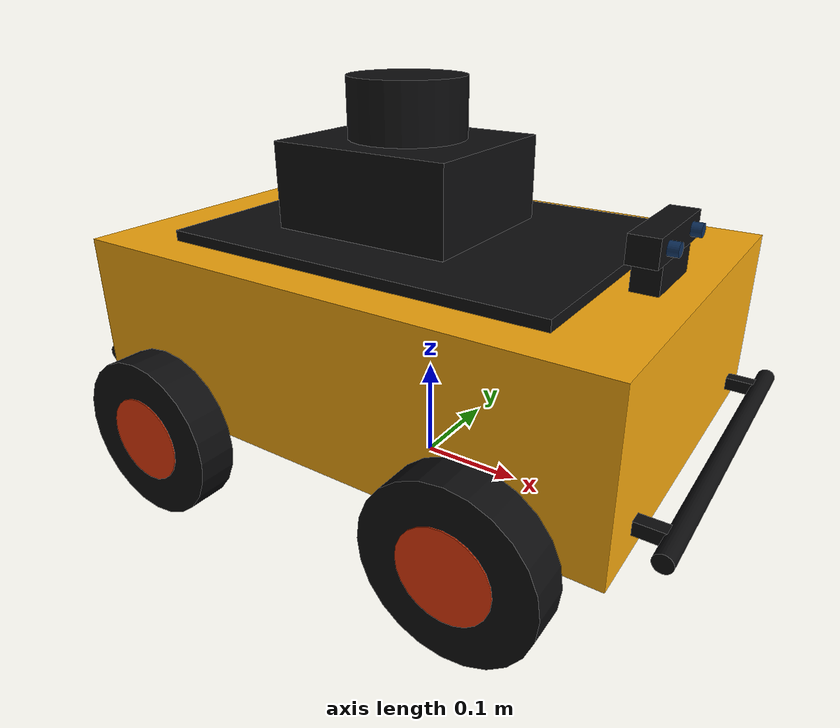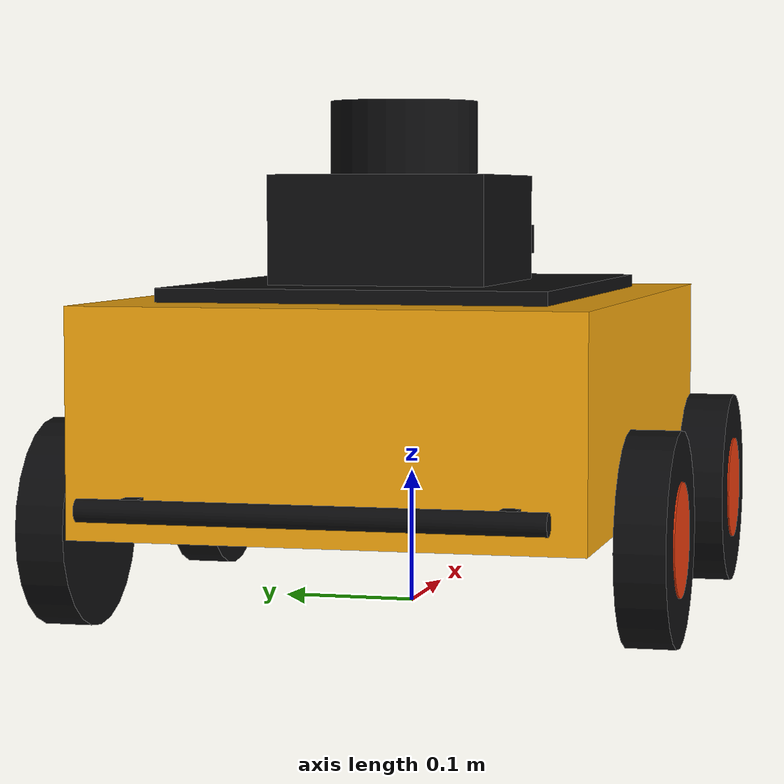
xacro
<?xml version="1.0" encoding="UTF-8"?>
<robot xmlns:xacro="http://www.ros.org/wiki/xacro" name="yellow_robot_v1_2">

  <!-- 一、集中参数：保留源码基本车身尺寸，所有衍生位置用表达式计算。 -->
  <xacro:property name="body_length" value="0.52"/>
  <xacro:property name="body_width" value="0.36"/>
  <xacro:property name="body_height" value="0.16"/>
  <xacro:property name="body_mass" value="12.0"/>
  <xacro:property name="wheel_radius" value="0.075"/>
  <xacro:property name="wheel_width" value="0.035"/>
  <xacro:property name="wheel_mass" value="0.8"/>
  <xacro:property name="wheel_x" value="0.16"/>
  <xacro:property name="wheel_y" value="0.21"/>
  <xacro:property name="body_top" value="${wheel_radius + body_height}"/>
  <xacro:property name="stereo_baseline" value="0.06"/>
  <xacro:property name="camera_x" value="0.24"/>
  <!-- 光心Z=0.273；外壳半高0.012，使外壳顶部Z=0.285，与设备机箱中部齐平。 -->
  <xacro:property name="camera_z" value="0.273"/>
  <xacro:property name="camera_width" value="640"/>
  <xacro:property name="camera_height" value="480"/>
  <xacro:property name="camera_hfov" value="1.047"/>
  <xacro:property name="laser_samples" value="360"/>
  <xacro:property name="laser_min_angle" value="${-pi}"/>
  <xacro:property name="laser_max_angle" value="${pi}"/>
  <xacro:property name="laser_min_range" value="0.12"/>
  <xacro:property name="laser_max_range" value="8.0"/>
  <xacro:property name="laser_x" value="-0.025"/>
  <xacro:property name="laser_z" value="0.385"/>

  <!-- URDF材质供RViz使用；各实体另设Gazebo材质。 -->
  <material name="yellow"><color rgba="0.95 0.65 0.05 1"/></material>
  <material name="black"><color rgba="0.05 0.05 0.055 1"/></material>
  <material name="orange"><color rgba="0.9 0.22 0.04 1"/></material>
  <material name="blue"><color rgba="0.05 0.18 0.35 1"/></material>

  <!-- 二、几何宏：视觉/碰撞同形。惯量以各实体自身中心计算。 -->
  <xacro:macro name="box_inertia" params="m sx sy sz xyz:='0 0 0'">
    <inertial>
      <origin xyz="${xyz}" rpy="0 0 0"/>
      <mass value="${m}"/>
      <inertia ixx="${m*(sy*sy+sz*sz)/12}" ixy="0" ixz="0"
               iyy="${m*(sx*sx+sz*sz)/12}" iyz="0" izz="${m*(sx*sx+sy*sy)/12}"/>
    </inertial>
  </xacro:macro>

  <xacro:macro name="fixed_box" params="name parent xyz sx sy sz m color gz">
    <link name="${name}">
      <xacro:box_inertia m="${m}" sx="${sx}" sy="${sy}" sz="${sz}"/>
      <visual name="${name}_visual">
        <geometry><box size="${sx} ${sy} ${sz}"/></geometry>
        <material name="${color}"/>
      </visual>
      <collision name="${name}_collision">
        <geometry><box size="${sx} ${sy} ${sz}"/></geometry>
      </collision>
    </link>
    <joint name="${name}_joint" type="fixed">
      <parent link="${parent}"/><child link="${name}"/>
      <origin xyz="${xyz}" rpy="0 0 0"/>
    </joint>
    <gazebo reference="${name}"><material>${gz}</material></gazebo>
  </xacro:macro>

  <!-- 圆柱局部轴为Z；方向通过固定关节rpy指定。 -->
  <xacro:macro name="fixed_cylinder" params="name parent xyz rpy radius length m color gz">
    <link name="${name}">
      <inertial>
        <mass value="${m}"/>
        <inertia ixx="${m*(3*radius*radius+length*length)/12}" ixy="0" ixz="0"
                 iyy="${m*(3*radius*radius+length*length)/12}" iyz="0"
                 izz="${m*radius*radius/2}"/>
      </inertial>
      <visual name="${name}_visual">
        <geometry><cylinder radius="${radius}" length="${length}"/></geometry>
        <material name="${color}"/>
      </visual>
      <collision name="${name}_collision">
        <geometry><cylinder radius="${radius}" length="${length}"/></geometry>
      </collision>
    </link>
    <joint name="${name}_joint" type="fixed">
      <parent link="${parent}"/><child link="${name}"/>
      <origin xyz="${xyz}" rpy="${rpy}"/>
    </joint>
    <gazebo reference="${name}"><material>${gz}</material></gazebo>
  </xacro:macro>

  <!-- 三、根坐标与黄色车身；车身惯性中心修正至几何中心。 -->
  <link name="base_footprint"/>
  <joint name="base_footprint_joint" type="fixed">
    <parent link="base_footprint"/><child link="base_link"/>
    <origin xyz="0 0 0" rpy="0 0 0"/>
  </joint>
  <link name="base_link">
    <xacro:box_inertia m="${body_mass}" sx="${body_length}" sy="${body_width}"
                      sz="${body_height}" xyz="0 0 ${wheel_radius + body_height/2}"/>
    <visual name="body_visual">
      <origin xyz="0 0 ${wheel_radius + body_height/2}"/>
      <geometry><box size="${body_length} ${body_width} ${body_height}"/></geometry>
      <material name="yellow"/>
    </visual>
    <collision name="body_collision">
      <origin xyz="0 0 ${wheel_radius + body_height/2}"/>
      <geometry><box size="${body_length} ${body_width} ${body_height}"/></geometry>
    </collision>
  </link>
  <gazebo reference="base_link"><material>Gazebo/Yellow</material></gazebo>
  <!-- 四、四个轮胎：轴沿Y，轮胎圆柱惯量也按Y轴设置。轮毂比轮胎外侧突出1毫米，避免共面闪烁。 -->
  <xacro:macro name="wheel" params="name x y side">
    <link name="${name}">
      <inertial>
        <mass value="${wheel_mass}"/>
        <inertia ixx="${wheel_mass*(3*wheel_radius*wheel_radius+wheel_width*wheel_width)/12}"
                 ixy="0" ixz="0" iyy="${wheel_mass*wheel_radius*wheel_radius/2}" iyz="0"
                 izz="${wheel_mass*(3*wheel_radius*wheel_radius+wheel_width*wheel_width)/12}"/>
      </inertial>
      <visual name="${name}_visual">
        <origin xyz="0 0 0" rpy="${pi/2} 0 0"/>
        <geometry><cylinder radius="${wheel_radius}" length="${wheel_width}"/></geometry>
        <material name="black"/>
      </visual>
      <collision name="${name}_collision">
        <origin xyz="0 0 0" rpy="${pi/2} 0 0"/>
        <geometry><cylinder radius="${wheel_radius}" length="${wheel_width}"/></geometry>
      </collision>
    </link>
    <joint name="${name}_joint" type="continuous">
      <parent link="base_link"/><child link="${name}"/>
      <origin xyz="${x} ${y} ${wheel_radius}" rpy="0 0 0"/>
      <axis xyz="0 1 0"/>
      <dynamics damping="0.01" friction="0"/>
    </joint>
    <gazebo reference="${name}">
      <material>Gazebo/Black</material>
      <mu1>1.0</mu1><mu2>1.0</mu2>
      <!-- Finite contact compliance prevents persistent four-wheel creep. -->
      <kp>1000000.0</kp><kd>100.0</kd>
      <minDepth>0.001</minDepth><maxVel>0.1</maxVel>
    </gazebo>
    <xacro:fixed_cylinder name="${name}_hub" parent="${name}"
      xyz="0 ${side*wheel_width/2} 0" rpy="${pi/2} 0 0"
      radius="0.04" length="0.002" m="0.02" color="orange" gz="Gazebo/Orange"/>
  </xacro:macro>
  <xacro:wheel name="left_front_wheel" x="${wheel_x}" y="${wheel_y}" side="1"/>
  <xacro:wheel name="left_rear_wheel" x="${-wheel_x}" y="${wheel_y}" side="1"/>
  <xacro:wheel name="right_front_wheel" x="${wheel_x}" y="${-wheel_y}" side="-1"/>
  <xacro:wheel name="right_rear_wheel" x="${-wheel_x}" y="${-wheel_y}" side="-1"/>

  <!-- 五、平台、设备箱、雷达壳体；扫描平面高于所有上部实体。 -->
  <xacro:fixed_box name="top_deck" parent="base_link" xyz="0 0 ${body_top+0.005}"
    sx="0.38" sy="0.28" sz="0.01" m="0.4" color="black" gz="Gazebo/Black"/>
  <xacro:fixed_box name="equipment_box" parent="base_link" xyz="-0.025 0 ${body_top+0.05}"
    sx="0.18" sy="0.16" sz="0.08" m="1.0" color="black" gz="Gazebo/Black"/>
  <xacro:fixed_cylinder name="lidar_housing" parent="base_link"
    xyz="${laser_x} 0 ${body_top+0.1175}" rpy="0 0 0"
    radius="0.055" length="0.055" m="0.2" color="black" gz="Gazebo/Black"/>
  <link name="laser_link"/>
  <joint name="laser_joint" type="fixed">
    <parent link="base_link"/><child link="laser_link"/>
    <origin xyz="${laser_x} 0 ${laser_z}" rpy="0 0 0"/>
  </joint>

  <!-- 六、前后防撞杆与支架。保留实体碰撞，纳入整车外形。 -->
  <xacro:macro name="bumper" params="name side">
    <xacro:fixed_cylinder name="${name}_bar" parent="base_link"
      xyz="${side*0.29} 0 0.10" rpy="${pi/2} 0 0"
      radius="0.008" length="0.32" m="0.08" color="black" gz="Gazebo/Black"/>
    <xacro:fixed_box name="${name}_left_bracket" parent="base_link"
      xyz="${side*0.2725} 0.13 0.10" sx="0.035" sy="0.012" sz="0.012"
      m="0.02" color="black" gz="Gazebo/Black"/>
    <xacro:fixed_box name="${name}_right_bracket" parent="base_link"
      xyz="${side*0.2725} -0.13 0.10" sx="0.035" sy="0.012" sz="0.012"
      m="0.02" color="black" gz="Gazebo/Black"/>
  </xacro:macro>
  <xacro:bumper name="front_bumper" side="1"/>
  <xacro:bumper name="rear_bumper" side="-1"/>

  <!-- 七、前置双目：camera_link为光心中点；光学坐标通过旋转得到。 -->
  <link name="camera_link"/>
  <joint name="camera_joint" type="fixed">
    <parent link="base_link"/><child link="camera_link"/>
    <origin xyz="${camera_x} 0 ${camera_z}" rpy="0 0 0"/>
  </joint>
  <xacro:fixed_box name="stereo_housing" parent="camera_link" xyz="-0.022 0 0"
    sx="0.026" sy="0.10" sz="0.024" m="0.08" color="black" gz="Gazebo/Black"/>
  <xacro:fixed_box name="stereo_mount" parent="base_link"
    xyz="${camera_x-0.022} 0 ${(body_top+camera_z-0.012)/2}"
    sx="0.024" sy="0.07" sz="${camera_z-0.012-body_top}" m="0.01"
    color="black" gz="Gazebo/Black"/>

  <xacro:macro name="stereo_eye" params="side y topic calibration_baseline">
    <link name="camera_${side}_link">
      <xacro:box_inertia m="0.005" sx="0.01" sy="0.012" sz="0.012" xyz="-0.005 0 0"/>
      <visual name="${side}_lens_visual">
        <origin xyz="-0.005 0 0" rpy="0 ${pi/2} 0"/>
        <geometry><cylinder radius="0.006" length="0.01"/></geometry>
        <material name="blue"/>
      </visual>
      <collision name="${side}_lens_collision">
        <origin xyz="-0.005 0 0" rpy="0 ${pi/2} 0"/>
        <geometry><cylinder radius="0.006" length="0.01"/></geometry>
      </collision>
    </link>
    <joint name="camera_${side}_joint" type="fixed">
      <parent link="camera_link"/><child link="camera_${side}_link"/>
      <origin xyz="0 ${y} 0" rpy="0 0 0"/>
    </joint>
    <link name="camera_${side}_optical_frame"/>
    <joint name="camera_${side}_optical_joint" type="fixed">
      <parent link="camera_${side}_link"/><child link="camera_${side}_optical_frame"/>
      <origin xyz="0 0 0" rpy="${-pi/2} 0 ${-pi/2}"/>
    </joint>
    <gazebo reference="camera_${side}_link">
      <material>Gazebo/Blue</material>
      <sensor name="ai_robot_camera_${side}" type="camera">
        <always_on>true</always_on>
        <visualize>false</visualize>
        <update_rate>10</update_rate>
        <camera>
          <horizontal_fov>${camera_hfov}</horizontal_fov>
          <image><width>${camera_width}</width><height>${camera_height}</height><format>R8G8B8</format></image>
          <clip><near>0.05</near><far>8.0</far></clip>
        </camera>
        <plugin name="ai_robot_camera_${side}_driver" filename="libgazebo_ros_camera.so">
          <ros>
            <namespace>/</namespace>
            <remapping>${topic}/image_raw:=/${topic}/image_raw</remapping>
            <remapping>${topic}/camera_info:=/${topic}/camera_info</remapping>
          </ros>
          <camera_name>${topic}</camera_name>
          <frame_name>camera_${side}_optical_frame</frame_name>
          <!-- 右目P[3]=-fx*baseline；几何基线由左右相机关节位置定义。 -->
          <hack_baseline>${calibration_baseline}</hack_baseline>
        </plugin>
      </sensor>
    </gazebo>
  </xacro:macro>
  <xacro:stereo_eye side="left" y="${stereo_baseline/2}" topic="camera" calibration_baseline="0"/>
  <xacro:stereo_eye side="right" y="${-stereo_baseline/2}" topic="camera/right"
    calibration_baseline="${stereo_baseline}"/>

  <!-- 八、IMU保留源坐标位置，质量计入车身。 -->
  <link name="imu_link"/>
  <joint name="imu_joint" type="fixed">
    <parent link="base_link"/><child link="imu_link"/>
    <origin xyz="0 0 ${body_top}" rpy="0 0 0"/>
  </joint>

  <!-- 九、保留双轮对差速驱动；轮距/轮径直接引用几何参数。 -->
  <gazebo>
    <plugin name="ai_robot_diff_drive" filename="libgazebo_ros_diff_drive.so">
      <ros><namespace>/</namespace><remapping>cmd_vel:=/cmd_vel</remapping><remapping>odom:=/odom</remapping></ros>
      <update_rate>50</update_rate>
      <num_wheel_pairs>2</num_wheel_pairs>
      <left_joint>left_front_wheel_joint</left_joint>
      <right_joint>right_front_wheel_joint</right_joint>
      <left_joint>left_rear_wheel_joint</left_joint>
      <right_joint>right_rear_wheel_joint</right_joint>
      <wheel_separation>${2*wheel_y}</wheel_separation>
      <wheel_separation>${2*wheel_y}</wheel_separation>
      <wheel_diameter>${2*wheel_radius}</wheel_diameter>
      <wheel_diameter>${2*wheel_radius}</wheel_diameter>
      <max_wheel_torque>5.0</max_wheel_torque>
      <max_wheel_acceleration>4.0</max_wheel_acceleration>
      <publish_odom>true</publish_odom>
      <publish_odom_tf>true</publish_odom_tf>
      <!-- 轮TF统一由robot_state_publisher依据joint_states发布，避免重复发布。 -->
      <publish_wheel_tf>false</publish_wheel_tf>
      <odometry_topic>odom</odometry_topic>
      <odometry_frame>odom</odometry_frame>
      <robot_base_frame>base_footprint</robot_base_frame>
    </plugin>
  </gazebo>
  <gazebo>
    <plugin name="ai_robot_joint_states" filename="libgazebo_ros_joint_state_publisher.so">
      <ros><namespace>/</namespace><remapping>joint_states:=/joint_states</remapping></ros>
      <update_rate>50</update_rate>
      <joint_name>left_front_wheel_joint</joint_name>
      <joint_name>left_rear_wheel_joint</joint_name>
      <joint_name>right_front_wheel_joint</joint_name>
      <joint_name>right_rear_wheel_joint</joint_name>
    </plugin>
  </gazebo>

  <!-- 十、沿用源码雷达与IMU传感器配置；雷达安装位姿已在laser_joint调整。 -->
  <gazebo reference="laser_link">
    <sensor name="ai_robot_laser" type="ray">
      <always_on>true</always_on>
      <!-- Keep laser data active while hiding dense rays that obscure the yellow body in GUI. -->
      <visualize>false</visualize>
      <update_rate>10</update_rate>
      <ray>
        <scan>
          <horizontal>
            <samples>${laser_samples}</samples>
            <resolution>1</resolution>
            <min_angle>${laser_min_angle}</min_angle>
            <max_angle>${laser_max_angle}</max_angle>
          </horizontal>
        </scan>
        <range>
          <min>${laser_min_range}</min>
          <max>${laser_max_range}</max>
          <resolution>0.01</resolution>
        </range>
        <noise>
          <type>gaussian</type>
          <mean>0.0</mean>
          <stddev>0.01</stddev>
        </noise>
      </ray>
      <plugin name="ai_robot_laser_scan" filename="libgazebo_ros_ray_sensor.so">
        <ros>
          <remapping>~/out:=/scan</remapping>
        </ros>
        <output_type>sensor_msgs/LaserScan</output_type>
        <frame_name>laser_link</frame_name>
      </plugin>
    </sensor>
  </gazebo>

  <gazebo reference="imu_link">
    <sensor name="ai_robot_imu" type="imu">
      <always_on>true</always_on>
      <update_rate>50</update_rate>
      <imu>
        <angular_velocity>
          <x>
            <noise type="gaussian">
              <mean>0.0</mean>
              <stddev>0.0002</stddev>
            </noise>
          </x>
          <y>
            <noise type="gaussian">
              <mean>0.0</mean>
              <stddev>0.0002</stddev>
            </noise>
          </y>
          <z>
            <noise type="gaussian">
              <mean>0.0</mean>
              <stddev>0.0002</stddev>
            </noise>
          </z>
        </angular_velocity>
        <linear_acceleration>
          <x>
            <noise type="gaussian">
              <mean>0.0</mean>
              <stddev>0.01</stddev>
            </noise>
          </x>
          <y>
            <noise type="gaussian">
              <mean>0.0</mean>
              <stddev>0.01</stddev>
            </noise>
          </y>
          <z>
            <noise type="gaussian">
              <mean>0.0</mean>
              <stddev>0.01</stddev>
            </noise>
          </z>
        </linear_acceleration>
      </imu>
      <plugin name="ai_robot_imu_driver" filename="libgazebo_ros_imu_sensor.so">
        <ros>
          <remapping>~/out:=/imu/data</remapping>
        </ros>
        <initial_orientation_as_reference>false</initial_orientation_as_reference>
        <frame_name>imu_link</frame_name>
      </plugin>
    </sensor>
  </gazebo>
</robot>
